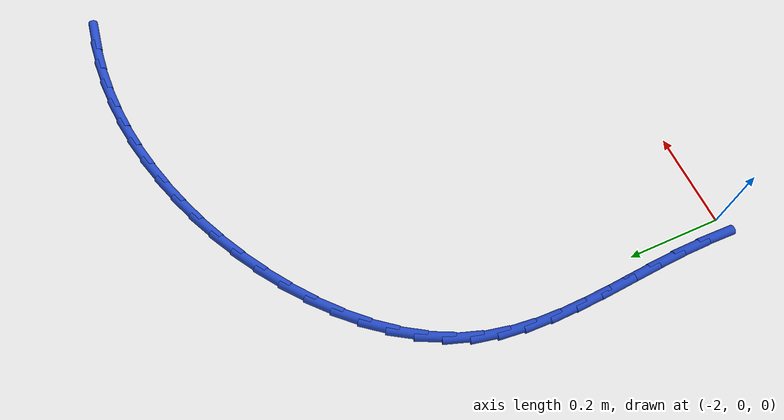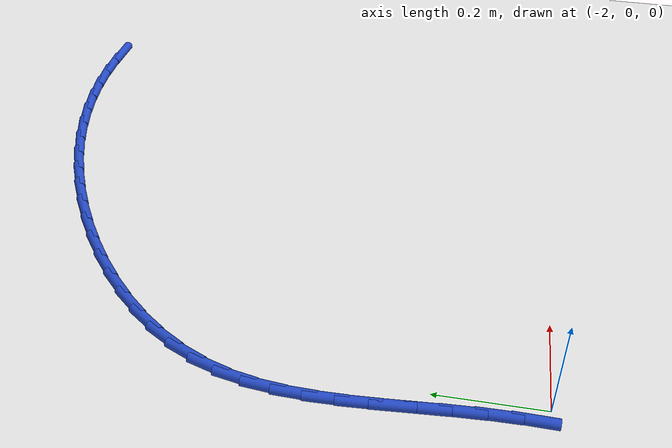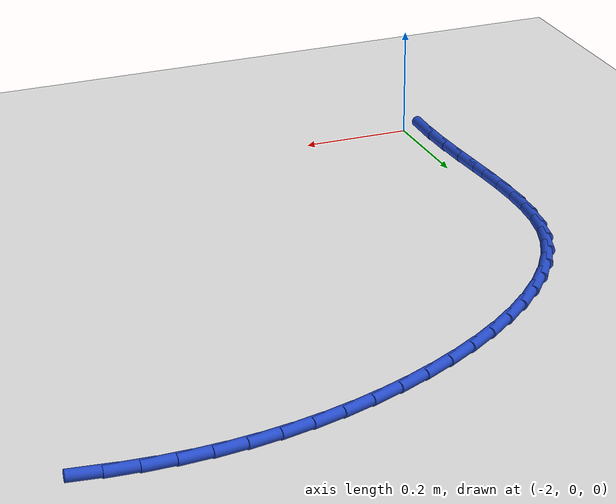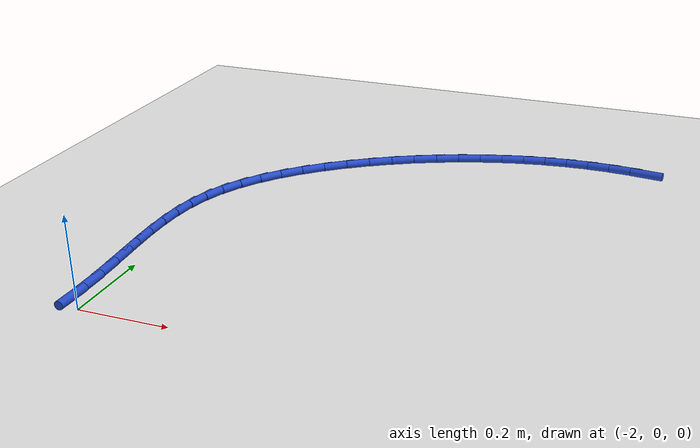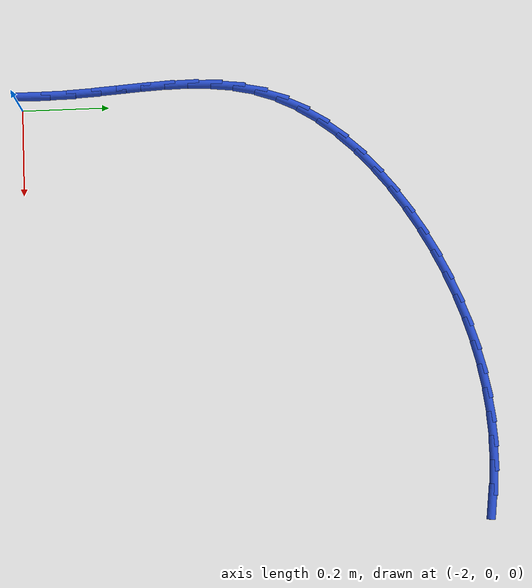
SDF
<sdf version="1.6">
 <world name="default">
  <model name="ground_plane">
   <static>1</static>
   <link name="link">
    <collision name="collision">
     <geometry><plane><normal>0 0 1</normal><size>100 100</size></plane></geometry>
     <surface><friction><ode><mu>100</mu><mu2>50</mu2></ode></friction></surface>
    </collision>
    <visual name="visual">
     <cast_shadows>0</cast_shadows>
     <geometry><plane><normal>0 0 1</normal><size>100 100</size></plane></geometry>
     <material>
      <script><uri>file://media/materials/scripts/gazebo.material</uri><name>Gazebo/WhiteGlow</name></script>
     </material>
    </visual>
   </link>
  </model>
  <model name="line">
   <link name="link_29">
    <pose>-1.0614524366674194 1.0346938347456056 0.01 0 1.57 -0.12304566686498457</pose>
    <collision name="collision">
     <geometry><cylinder><radius>0.01</radius><length>0.08</length></cylinder></geometry>
    </collision>
    <visual name="visual">
     <material>
      <script><name>Gazebo/Blue</name><uri>file://media/materials/scripts/gazebo.material</uri></script>
     </material>
     <geometry><cylinder><radius>0.01</radius><length>0.08</length></cylinder></geometry>
    </visual>
   </link>
   <link name="link_30">
    <pose>-1.1151896331445652 1.0413395369902927 0.01 0 1.57 -0.058964801819477976</pose>
    <collision name="collision">
     <geometry><cylinder><radius>0.01</radius><length>0.08</length></cylinder></geometry>
    </collision>
    <visual name="visual">
     <material>
      <script><name>Gazebo/Blue</name><uri>file://media/materials/scripts/gazebo.material</uri></script>
     </material>
     <geometry><cylinder><radius>0.01</radius><length>0.08</length></cylinder></geometry>
    </visual>
   </link>
   <link name="link_31">
    <pose>-1.169298238964548 1.044533742990307 0.01 0 1.57 0.004660196372947648</pose>
    <collision name="collision">
     <geometry><cylinder><radius>0.01</radius><length>0.08</length></cylinder></geometry>
    </collision>
    <visual name="visual">
     <material>
      <script><name>Gazebo/Blue</name><uri>file://media/materials/scripts/gazebo.material</uri></script>
     </material>
     <geometry><cylinder><radius>0.01</radius><length>0.08</length></cylinder></geometry>
    </visual>
   </link>
   <link name="link_32">
    <pose>-1.2236836078310578 1.0442802946568224 0.01 0 1.57 0.0666550277062772</pose>
    <collision name="collision">
     <geometry><cylinder><radius>0.01</radius><length>0.08</length></cylinder></geometry>
    </collision>
    <visual name="visual">
     <material>
      <script><name>Gazebo/Blue</name><uri>file://media/materials/scripts/gazebo.material</uri></script>
     </material>
     <geometry><cylinder><radius>0.01</radius><length>0.08</length></cylinder></geometry>
    </visual>
   </link>
   <link name="link_33">
    <pose>-1.2782287091950457 1.0406391954786407 0.01 0 1.57 0.12697442617266672</pose>
    <collision name="collision">
     <geometry><cylinder><radius>0.01</radius><length>0.08</length></cylinder></geometry>
    </collision>
    <visual name="visual">
     <material>
      <script><name>Gazebo/Blue</name><uri>file://media/materials/scripts/gazebo.material</uri></script>
     </material>
     <geometry><cylinder><radius>0.01</radius><length>0.08</length></cylinder></geometry>
    </visual>
   </link>
   <link name="link_34">
    <pose>-1.3328165125074605 1.033670448944565 0.01 0 1.57 0.18561577106615992</pose>
    <collision name="collision">
     <geometry><cylinder><radius>0.01</radius><length>0.08</length></cylinder></geometry>
    </collision>
    <visual name="visual">
     <material>
      <script><name>Gazebo/Blue</name><uri>file://media/materials/scripts/gazebo.material</uri></script>
     </material>
     <geometry><cylinder><radius>0.01</radius><length>0.08</length></cylinder></geometry>
    </visual>
   </link>
   <link name="link_35">
    <pose>-1.3873299872192544 1.023434058543396 0.01 0 1.57 0.2426123235705388</pose>
    <collision name="collision">
     <geometry><cylinder><radius>0.01</radius><length>0.08</length></cylinder></geometry>
    </collision>
    <visual name="visual">
     <material>
      <script><name>Gazebo/Blue</name><uri>file://media/materials/scripts/gazebo.material</uri></script>
     </material>
     <geometry><cylinder><radius>0.01</radius><length>0.08</length></cylinder></geometry>
    </visual>
   </link>
   <link name="link_36">
    <pose>-1.441652102781377 1.0099900277639375 0.01 0 1.57 0.2980263194688238</pose>
    <collision name="collision">
     <geometry><cylinder><radius>0.01</radius><length>0.08</length></cylinder></geometry>
    </collision>
    <visual name="visual">
     <material>
      <script><name>Gazebo/Blue</name><uri>file://media/materials/scripts/gazebo.material</uri></script>
     </material>
     <geometry><cylinder><radius>0.01</radius><length>0.08</length></cylinder></geometry>
    </visual>
   </link>
   <link name="link_37">
    <pose>-1.4956658286447784 0.9933983600949908 0.01 0 1.57 0.3519423870925828</pose>
    <collision name="collision">
     <geometry><cylinder><radius>0.01</radius><length>0.08</length></cylinder></geometry>
    </collision>
    <visual name="visual">
     <material>
      <script><name>Gazebo/Blue</name><uri>file://media/materials/scripts/gazebo.material</uri></script>
     </material>
     <geometry><cylinder><radius>0.01</radius><length>0.08</length></cylinder></geometry>
    </visual>
   </link>
   <link name="link_38">
    <pose>-1.549254134260409 0.9737190590253586 0.01 0 1.57 0.4044615869180826</pose>
    <collision name="collision">
     <geometry><cylinder><radius>0.01</radius><length>0.08</length></cylinder></geometry>
    </collision>
    <visual name="visual">
     <material>
      <script><name>Gazebo/Blue</name><uri>file://media/materials/scripts/gazebo.material</uri></script>
     </material>
     <geometry><cylinder><radius>0.01</radius><length>0.08</length></cylinder></geometry>
    </visual>
   </link>
   <link name="link_39">
    <pose>-1.6022999890792196 0.9510121280438429 0.01 0 1.57 0.45570321497103167</pose>
    <collision name="collision">
     <geometry><cylinder><radius>0.01</radius><length>0.08</length></cylinder></geometry>
    </collision>
    <visual name="visual">
     <material>
      <script><name>Gazebo/Blue</name><uri>file://media/materials/scripts/gazebo.material</uri></script>
     </material>
     <geometry><cylinder><radius>0.01</radius><length>0.08</length></cylinder></geometry>
    </visual>
   </link>
   <link name="link_40">
    <pose>-1.6546851509367329 0.925337710229056 0.01 0 1.57 0.5067780175666302</pose>
    <collision name="collision">
     <geometry><cylinder><radius>0.01</radius><length>0.08</length></cylinder></geometry>
    </collision>
    <visual name="visual">
     <material>
      <script><name>Gazebo/Blue</name><uri>file://media/materials/scripts/gazebo.material</uri></script>
     </material>
     <geometry><cylinder><radius>0.01</radius><length>0.08</length></cylinder></geometry>
    </visual>
   </link>
   <link name="link_41">
    <pose>-1.7061397058449497 0.8967734227198851 0.01 0 1.57 0.5603154097426152</pose>
    <collision name="collision">
     <geometry><cylinder><radius>0.01</radius><length>0.08</length></cylinder></geometry>
    </collision>
    <visual name="visual">
     <material>
      <script><name>Gazebo/Blue</name><uri>file://media/materials/scripts/gazebo.material</uri></script>
     </material>
     <geometry><cylinder><radius>0.01</radius><length>0.08</length></cylinder></geometry>
    </visual>
   </link>
   <link name="link_42">
    <pose>-1.7560964055274748 0.8654311384395615 0.01 0 1.57 0.6177659655184193</pose>
    <collision name="collision">
     <geometry><cylinder><radius>0.01</radius><length>0.08</length></cylinder></geometry>
    </collision>
    <visual name="visual">
     <material>
      <script><name>Gazebo/Blue</name><uri>file://media/materials/scripts/gazebo.material</uri></script>
     </material>
     <geometry><cylinder><radius>0.01</radius><length>0.08</length></cylinder></geometry>
    </visual>
   </link>
   <link name="link_43">
    <pose>-1.8039534508098087 0.8314267109087786 0.01 0 1.57 0.6804702594220474</pose>
    <collision name="collision">
     <geometry><cylinder><radius>0.01</radius><length>0.08</length></cylinder></geometry>
    </collision>
    <visual name="visual">
     <material>
      <script><name>Gazebo/Blue</name><uri>file://media/materials/scripts/gazebo.material</uri></script>
     </material>
     <geometry><cylinder><radius>0.01</radius><length>0.08</length></cylinder></geometry>
    </visual>
   </link>
   <link name="link_44">
    <pose>-1.849109042517451 0.7948759936482319 0.01 0 1.57 0.7498933393915682</pose>
    <collision name="collision">
     <geometry><cylinder><radius>0.01</radius><length>0.08</length></cylinder></geometry>
    </collision>
    <visual name="visual">
     <material>
      <script><name>Gazebo/Blue</name><uri>file://media/materials/scripts/gazebo.material</uri></script>
     </material>
     <geometry><cylinder><radius>0.01</radius><length>0.08</length></cylinder></geometry>
    </visual>
   </link>
   <link name="link_45">
    <pose>-1.8909613814759014 0.7558948401786145 0.01 0 1.57 0.8276284848851112</pose>
    <collision name="collision">
     <geometry><cylinder><radius>0.01</radius><length>0.08</length></cylinder></geometry>
    </collision>
    <visual name="visual">
     <material>
      <script><name>Gazebo/Blue</name><uri>file://media/materials/scripts/gazebo.material</uri></script>
     </material>
     <geometry><cylinder><radius>0.01</radius><length>0.08</length></cylinder></geometry>
    </visual>
   </link>
   <link name="link_46">
    <pose>-1.9289086685106596 0.714599104020622 0.01 0 1.57 0.9153440637340707</pose>
    <collision name="collision">
     <geometry><cylinder><radius>0.01</radius><length>0.08</length></cylinder></geometry>
    </collision>
    <visual name="visual">
     <material>
      <script><name>Gazebo/Blue</name><uri>file://media/materials/scripts/gazebo.material</uri></script>
     </material>
     <geometry><cylinder><radius>0.01</radius><length>0.08</length></cylinder></geometry>
    </visual>
   </link>
   <link name="link_47">
    <pose>-1.9623491044472254 0.6711046386949477 0.01 0 1.57 1.0146312826524457</pose>
    <collision name="collision">
     <geometry><cylinder><radius>0.01</radius><length>0.08</length></cylinder></geometry>
    </collision>
    <visual name="visual">
     <material>
      <script><name>Gazebo/Blue</name><uri>file://media/materials/scripts/gazebo.material</uri></script>
     </material>
     <geometry><cylinder><radius>0.01</radius><length>0.08</length></cylinder></geometry>
    </visual>
   </link>
   <link name="link_48">
    <pose>-1.9906808901110986 0.6255272977222868 0.01 0 1.57 1.1267001251366897</pose>
    <collision name="collision">
     <geometry><cylinder><radius>0.01</radius><length>0.08</length></cylinder></geometry>
    </collision>
    <visual name="visual">
     <material>
      <script><name>Gazebo/Blue</name><uri>file://media/materials/scripts/gazebo.material</uri></script>
     </material>
     <geometry><cylinder><radius>0.01</radius><length>0.08</length></cylinder></geometry>
    </visual>
   </link>
   <link name="link_49">
    <pose>-2.0133022263277787 0.5779829346233333 0.01 0 1.57 1.2507962625089806</pose>
    <collision name="collision">
     <geometry><cylinder><radius>0.01</radius><length>0.08</length></cylinder></geometry>
    </collision>
    <visual name="visual">
     <material>
      <script><name>Gazebo/Blue</name><uri>file://media/materials/scripts/gazebo.material</uri></script>
     </material>
     <geometry><cylinder><radius>0.01</radius><length>0.08</length></cylinder></geometry>
    </visual>
   </link>
   <link name="link_50">
    <pose>-2.0296708520616145 0.5285890132977114 0.01 0 1.57 1.369102545570518</pose>
    <collision name="collision">
     <geometry><cylinder><radius>0.01</radius><length>0.08</length></cylinder></geometry>
    </collision>
    <visual name="visual">
     <material>
      <script><name>Gazebo/Blue</name><uri>file://media/materials/scripts/gazebo.material</uri></script>
     </material>
     <geometry><cylinder><radius>0.01</radius><length>0.08</length></cylinder></geometry>
    </visual>
   </link>
   <link name="link_51">
    <pose>-2.0401199524770863 0.47748667658668315 0.01 0 1.57 1.4661709818706197</pose>
    <collision name="collision">
     <geometry><cylinder><radius>0.01</radius><length>0.08</length></cylinder></geometry>
    </collision>
    <visual name="visual">
     <material>
      <script><name>Gazebo/Blue</name><uri>file://media/materials/scripts/gazebo.material</uri></script>
     </material>
     <geometry><cylinder><radius>0.01</radius><length>0.08</length></cylinder></geometry>
    </visual>
   </link>
   <link name="link_52">
    <pose>-2.0456488320964166 0.42483508443112405 0.01 0 1.57 1.540742157281352</pose>
    <collision name="collision">
     <geometry><cylinder><radius>0.01</radius><length>0.08</length></cylinder></geometry>
    </collision>
    <visual name="visual">
     <material>
      <script><name>Gazebo/Blue</name><uri>file://media/materials/scripts/gazebo.material</uri></script>
     </material>
     <geometry><cylinder><radius>0.01</radius><length>0.08</length></cylinder></geometry>
    </visual>
   </link>
   <link name="link_53">
    <pose>-2.0472734857578327 0.3707938482091539 0.01 0 1.57 -1.5479389287467678</pose>
    <collision name="collision">
     <geometry><cylinder><radius>0.01</radius><length>0.08</length></cylinder></geometry>
    </collision>
    <visual name="visual">
     <material>
      <script><name>Gazebo/Blue</name><uri>file://media/materials/scripts/gazebo.material</uri></script>
     </material>
     <geometry><cylinder><radius>0.01</radius><length>0.08</length></cylinder></geometry>
    </visual>
   </link>
   <link name="link_54">
    <pose>-2.0460099082995624 0.31552257929889094 0.01 0 1.57 -1.515196613953368</pose>
    <collision name="collision">
     <geometry><cylinder><radius>0.01</radius><length>0.08</length></cylinder></geometry>
    </collision>
    <visual name="visual">
     <material>
      <script><name>Gazebo/Blue</name><uri>file://media/materials/scripts/gazebo.material</uri></script>
     </material>
     <geometry><cylinder><radius>0.01</radius><length>0.08</length></cylinder></geometry>
    </visual>
   </link>
   <link name="link_55">
    <pose>-2.0428740945598314 0.25918088907845466 0.01 0 1.57 -1.5011818235007555</pose>
    <collision name="collision">
     <geometry><cylinder><radius>0.01</radius><length>0.08</length></cylinder></geometry>
    </collision>
    <visual name="visual">
     <material>
      <script><name>Gazebo/Blue</name><uri>file://media/materials/scripts/gazebo.material</uri></script>
     </material>
     <geometry><cylinder><radius>0.01</radius><length>0.08</length></cylinder></geometry>
    </visual>
   </link>
   <link name="link_56">
    <pose>-2.0388820393768667 0.20192838892596335 0.01 0 1.57 -1.5048222574053982</pose>
    <collision name="collision">
     <geometry><cylinder><radius>0.01</radius><length>0.08</length></cylinder></geometry>
    </collision>
    <visual name="visual">
     <material>
      <script><name>Gazebo/Blue</name><uri>file://media/materials/scripts/gazebo.material</uri></script>
     </material>
     <geometry><cylinder><radius>0.01</radius><length>0.08</length></cylinder></geometry>
    </visual>
   </link>
   <link name="link_57">
    <pose>-2.0350497375888965 0.14392469021953674 0.01 0 1.57 -1.5254900261575022</pose>
    <collision name="collision">
     <geometry><cylinder><radius>0.01</radius><length>0.08</length></cylinder></geometry>
    </collision>
    <visual name="visual">
     <material>
      <script><name>Gazebo/Blue</name><uri>file://media/materials/scripts/gazebo.material</uri></script>
     </material>
     <geometry><cylinder><radius>0.01</radius><length>0.08</length></cylinder></geometry>
    </visual>
   </link>
   <link name="link_58">
    <pose>-2.0323931840341456 0.08532940433729284 0.01 0 1.57 -1.5610998214097795</pose>
    <collision name="collision">
     <geometry><cylinder><radius>0.01</radius><length>0.08</length></cylinder></geometry>
    </collision>
    <visual name="visual">
     <material>
      <script><name>Gazebo/Blue</name><uri>file://media/materials/scripts/gazebo.material</uri></script>
     </material>
     <geometry><cylinder><radius>0.01</radius><length>0.08</length></cylinder></geometry>
    </visual>
   </link>
   <link name="link_59">
    <pose>-2.031820869932297 0.026308536276136548 0.01 0 1.57 1.5475473617009035</pose>
    <collision name="collision">
     <geometry><cylinder><radius>0.01</radius><length>0.08</length></cylinder></geometry>
    </collision>
    <visual name="visual">
     <material>
      <script><name>Gazebo/Blue</name><uri>file://media/materials/scripts/gazebo.material</uri></script>
     </material>
     <geometry><cylinder><radius>0.01</radius><length>0.08</length></cylinder></geometry>
    </visual>
   </link>
  </model>
 </world>
</sdf>
